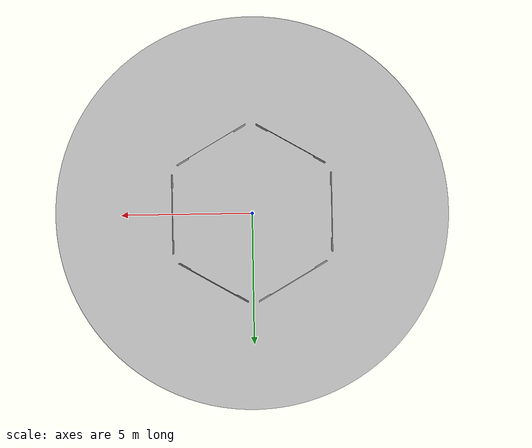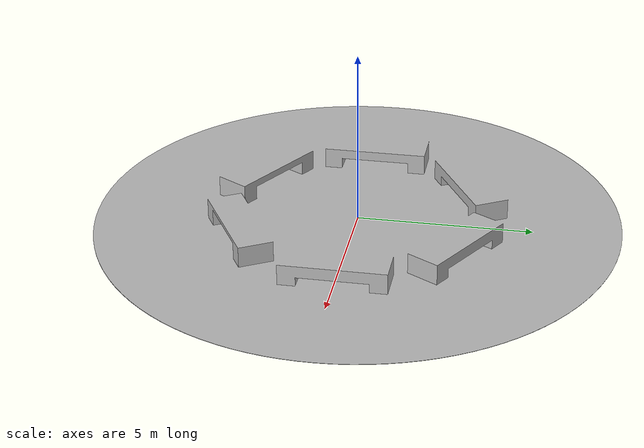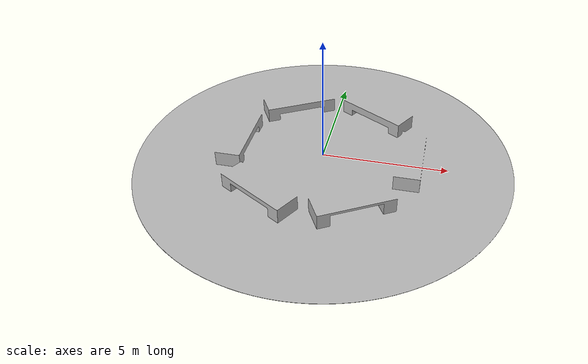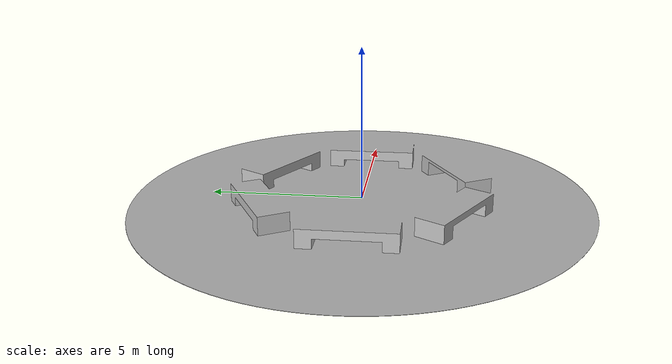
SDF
<sdf version="1.7">
 <world name="default">
  <light name="sun" type="directional">
   <cast_shadows>0</cast_shadows>
   <pose>0 0 10 0 -0 0</pose>
   <diffuse>0.8 0.8 0.8 1</diffuse>
   <specular>0.2 0.2 0.2 1</specular>
   <attenuation>
    <range>1000</range>
    <constant>0.9</constant>
    <linear>0.01</linear>
    <quadratic>0.001</quadratic>
   </attenuation>
   <direction>-0.5 0.1 -0.9</direction>
   <spot><inner_angle>0</inner_angle><outer_angle>0</outer_angle><falloff>0</falloff></spot>
  </light>
  <gravity>0 0 -9.8</gravity>
  <magnetic_field>6e-06 2.3e-05 -4.2e-05</magnetic_field>
  <atmosphere type="adiabatic"/>
  <physics type="ode">
   <max_step_size>0.001</max_step_size>
   <real_time_factor>1</real_time_factor>
   <real_time_update_rate>1000</real_time_update_rate>
  </physics>
  <scene><ambient>0.4 0.4 0.4 1</ambient><background>0.7 0.7 0.7 1</background><shadows>0</shadows></scene>
  <spherical_coordinates>
   <surface_model>EARTH_WGS84</surface_model>
   <latitude_deg>0</latitude_deg>
   <longitude_deg>0</longitude_deg>
   <elevation>0</elevation>
   <heading_deg>0</heading_deg>
  </spherical_coordinates>
  <model name="parkour_4">
   <pose>0.002455 -0.00526 0 0 -0 0</pose>
   <static>1</static>
   <link name="body">
    <visual name="visual">
     <geometry><mesh><uri>model://parkour_4/media/parkour_4.dae</uri></mesh></geometry>
    </visual>
    <collision name="collision">
     <geometry><mesh><uri>model://parkour_4/media/parkour_4.dae</uri></mesh></geometry>
     <max_contacts>1</max_contacts>
    </collision>
   </link>
  </model>
 </world>
</sdf>
